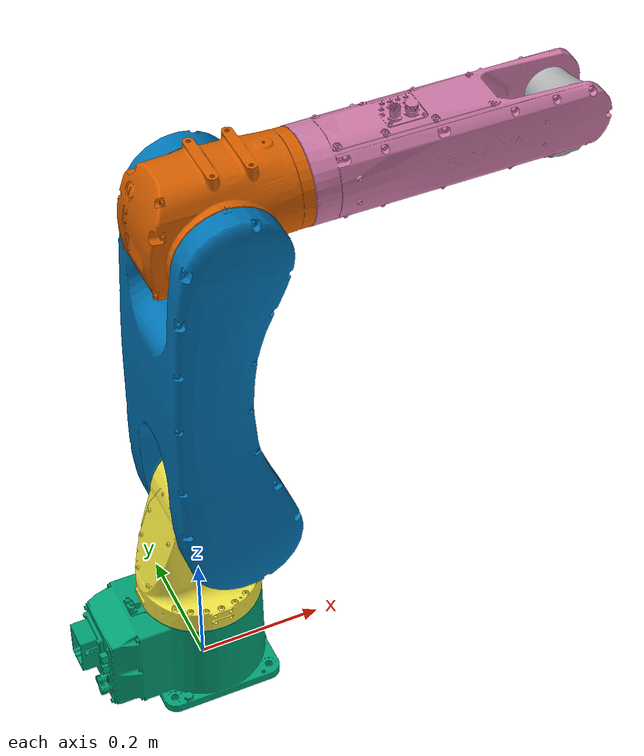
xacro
<?xml version="1.0" ?>
<robot name="nex10" xmlns:xacro="http://ros.org/wiki/xacro">
  <xacro:arg name="tf_prefix" default="" />
  <xacro:arg name="use_mock_hardware" default="false" />
  <xacro:arg name="ip" default="192.168.19.201" />
  <xacro:arg name="port" default="50300" />
  <xacro:arg name="use_ft_sensor" default="false" />
  <xacro:arg name="ft_sensor_ip" default="192.168.19.210" />

  <xacro:include filename="$(find ynx_description)/urdf/nex10/nex10.urdf_macro.xacro" />
  <xacro:include filename="$(find ynx_hardware_interface)/config/nex10/nex10.ros2_control_macro.xacro" />

  <xacro:nex10_urdf_macro tf_prefix="$(arg tf_prefix)"/>
  <xacro:nex10_ros2_control_macro tf_prefix="$(arg tf_prefix)" use_mock_hardware="$(arg use_mock_hardware)" ip="$(arg ip)" port="$(arg port)"/>

  <xacro:if value="$(arg use_ft_sensor)">
    <xacro:include filename="$(find netft_hardware_interface)/config/netft.ros2_control_macro.xacro" />
    <xacro:netft_ros2_control_macro tf_prefix="$(arg tf_prefix)" netft_ip="$(arg ft_sensor_ip)" cpf="600000" cpt="1000000"/>
    <link name="$(arg tf_prefix)ft_frame"/>
    <joint name="$(arg tf_prefix)flange-ft_frame" type="fixed">
      <origin xyz="0 0 -0.0382" rpy="${radians(0)} 0 ${radians(90)}"/>
      <parent link="$(arg tf_prefix)flange"/>
      <child link="$(arg tf_prefix)ft_frame"/>
    </joint>
  </xacro:if>
</robot>

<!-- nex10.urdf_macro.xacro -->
<robot xmlns:xacro="http://ros.org/wiki/xacro">
  <xacro:macro name="nex10_urdf_macro" params="tf_prefix">

    <!-- Links -->
    <link name="${tf_prefix}mount_point"/>
    <link name="${tf_prefix}base_link"/>
    <link name="${tf_prefix}link_0">
      <visual>
        <geometry>
          <mesh filename="package://ynx_description/meshes/nex10/visual/nex10_link_0.obj" scale="1.00000 1.00000 1.00000"/>
        </geometry>
        <origin xyz="0.00000 0.00000 0.00000" rpy="0.00000 0.00000 0.00000"/>
      </visual>
      <collision>
        <geometry>
          <mesh filename="package://ynx_description/meshes/nex10/collision/nex10_link_0.obj" scale="1.00000 1.00000 1.00000"/>
        </geometry>
        <origin xyz="0.00000 0.00000 0.00000" rpy="0.00000 0.00000 0.00000"/>
      </collision>
      <inertial>
        <origin xyz="-0.01198136 -0.000119839 0.10056914" rpy="0 0 0"/>
        <mass value="11.614652"/>
        <inertia ixx="0.058778146" ixy="-0.000277637" ixz="-0.00201866" iyy="0.075028225" iyz="-0.000010718461" izz="0.063979727"/>
      </inertial>
    </link>

    <link name="${tf_prefix}link_1">
      <visual>
        <geometry>
          <mesh filename="package://ynx_description/meshes/nex10/visual/nex10_link_1.obj" scale="1.00000 1.00000 1.00000"/>
        </geometry>
        <origin xyz="0.00000 0.00000 -0.34000" rpy="0.00000 0.00000 0.00000"/>
      </visual>
      <collision>
        <geometry>
          <mesh filename="package://ynx_description/meshes/nex10/collision/nex10_link_1.obj" scale="1.00000 1.00000 1.00000"/>
        </geometry>
        <origin xyz="0.00000 0.00000 -0.34000" rpy="0.00000 0.00000 0.00000"/>
      </collision>
      <inertial>
        <origin xyz="0.027872731 -0.010899885 -0.037883009" rpy="0 0 0"/>
        <mass value="14.601211"/>
        <inertia ixx="0.12940621" ixy="0.0062285841" ixz="-0.0011149618" iyy="0.14728768" iyz="-0.00040799675" izz="0.080226141"/>
       </inertial>
    </link>

    <link name="${tf_prefix}link_2">
      <visual>
        <geometry>
          <mesh filename="package://ynx_description/meshes/nex10/visual/nex10_link_2.obj" scale="1.00000 1.00000 1.00000"/>
        </geometry>
        <origin xyz="-0.34000 -0.04000 0.00000" rpy="${pi/2} 0.00000 ${pi/2}"/>
      </visual>
      <collision>
        <geometry>
          <mesh filename="package://ynx_description/meshes/nex10/collision/nex10_link_2.obj" scale="1.00000 1.00000 1.00000"/>
        </geometry>
        <origin xyz="-0.34000 -0.04000 0.00000" rpy="${pi/2} 0.00000 ${pi/2}"/>
      </collision>
      <inertial>
        <origin xyz="0.2484611 0.023415923 0.027537079" rpy="0 0 0"/>
        <mass value="12.134303"/>
        <inertia ixx="0.11968487" ixy="-0.076545305" ixz="-0.082199967" iyy="1.2259992" iyz="-0.006486549" izz="1.1844546"/>
      </inertial>
    </link>

    <link name="${tf_prefix}link_3">
      <visual>
        <geometry>
          <mesh filename="package://ynx_description/meshes/nex10/visual/nex10_link_3.obj" scale="1.00000 1.00000 1.00000"/>
        </geometry>
        <origin xyz="-0.87000 0.04000 -0.00000" rpy="${-pi/2} -0.00000 ${-pi/2}"/>
      </visual>
      <collision>
        <geometry>
          <mesh filename="package://ynx_description/meshes/nex10/collision/nex10_link_3.obj" scale="1.00000 1.00000 1.00000"/>
        </geometry>
        <origin xyz="-0.87000 0.04000 -0.00000" rpy="${-pi/2} -0.00000 ${-pi/2}"/>
      </collision>
      <inertial>
        <origin xyz="0.020784778 -0.027763654 0.01915227" rpy="0 0 0"/>
        <mass value="11.575628"/>
        <inertia ixx="0.076719056" ixy="0.01439633" ixz="-0.00013095882" iyy="0.052912728" iyz="-0.00018457355" izz="0.082735153"/>
      </inertial>
    </link>

    <link name="${tf_prefix}link_4">
      <visual>
        <geometry>
          <mesh filename="package://ynx_description/meshes/nex10/visual/nex10_link_4.obj" scale="1.00000 1.00000 1.00000"/>
        </geometry>
        <origin xyz="-0.91000 -0.00000 0.57000" rpy="0.00000 ${pi/2} 0.00000"/>
      </visual>
      <collision>
        <geometry>
          <mesh filename="package://ynx_description/meshes/nex10/collision/nex10_link_4.obj" scale="1.00000 1.00000 1.00000"/>
        </geometry>
        <origin xyz="-0.91000 -0.00000 0.57000" rpy="0.00000 ${pi/2} 0.00000"/>
      </collision>
      <inertial>
        <origin xyz="0.01482369566 0.00032834388 0.09921236" rpy="0 0 0"/>
        <mass value="6.4670019"/>
        <inertia ixx="0.331695" ixy="0.000012290258" ixz="-0.00017923527" iyy="0.33131076" iyz="-0.000016232548" izz="0.01604509"/>
      </inertial>
    </link>

    <link name="${tf_prefix}link_5">
      <visual>
        <geometry>
          <mesh filename="package://ynx_description/meshes/nex10/visual/nex10_link_5.obj" scale="1.00000 1.00000 1.00000"/>
        </geometry>
        <origin xyz="-0.91000 0.57000 -0.00000" rpy="${-pi/2} 0.00000 ${-pi/2}"/>
      </visual>
      <collision>
        <geometry>
          <mesh filename="package://ynx_description/meshes/nex10/collision/nex10_link_5.obj" scale="1.00000 1.00000 1.00000"/>
        </geometry>
        <origin xyz="-0.91000 0.57000 -0.00000" rpy="${-pi/2} 0.00000 ${-pi/2}"/>
      </collision>
      <inertial>
        <origin xyz="-0.00000070659904 -0.0014020336 0.010049637" rpy="0 0 0"/>
        <mass value="1.4924486"/>
        <inertia ixx="0.0016160342" ixy="0.00000031177813" ixz="0.000000038377563" iyy="0.0016047549" iyz="-0.000042378476" izz="0.0013385143"/>
      </inertial>
    </link>

    <link name="${tf_prefix}link_6">
      <visual>
        <geometry>
          <mesh filename="package://ynx_description/meshes/nex10/visual/nex10_link_6.obj" scale="1.00000 1.00000 1.00000"/>
        </geometry>
        <origin xyz="0.57000 -0.00000 -0.83000" rpy="0.00000 0.00000 ${pi}"/>
      </visual>
      <collision>
        <geometry>
          <mesh filename="package://ynx_description/meshes/nex10/collision/nex10_link_6.obj" scale="1.00000 1.00000 1.00000"/>
        </geometry>
        <origin xyz="0.57000 -0.00000 -0.83000" rpy="0.00000 0.00000 ${pi}"/>
      </collision>
      <inertial>
        <origin xyz="-0.0000073005324 -0.00000099813232 -0.022010615" rpy="0 0 0"/>
        <mass value="0.67431737"/>
        <inertia ixx="0.00061684704" ixy="-0.0000001077084" ixz="-0.000000079162174" iyy="0.00069023137" iyz="0.0000000083938401" izz="0.00049323898"/>
      </inertial>
    </link>

    <!-- Joints -->

    <joint name="${tf_prefix}base_joint" type="fixed">
      <origin xyz="0 0 0" rpy="0 0 0" />
      <parent link="${tf_prefix}mount_point" />
      <child link="${tf_prefix}base_link" />
    </joint>

    <joint name="${tf_prefix}base_link-link_0" type="fixed">
      <parent link="${tf_prefix}base_link" />
      <child link="${tf_prefix}link_0" />
      <origin xyz="0 0 0" rpy="0 0 0" />
    </joint>

    <joint name="${tf_prefix}joint_1" type="revolute">
      <parent link="${tf_prefix}link_0"/>
      <child link="${tf_prefix}link_1"/>
      <axis xyz="0 0 1"/>
      <origin xyz="0.00000 0.00000 0.34000" rpy="0.00000 0.00000 0.00000"/>
      <limit lower="${radians(-180)}" upper="${radians(180)}" effort="311.25" velocity="${radians(300)}"/>
    </joint>

    <joint name="${tf_prefix}joint_2" type="revolute">
      <parent link="${tf_prefix}link_1"/>
      <child link="${tf_prefix}link_2"/>
      <axis xyz="0 0 1"/>
      <origin xyz="0.04000 0.00000 0.00000" rpy="${-pi/2} ${-pi/2} 0.00000"/>
      <limit lower="${radians(-100)}" upper="${radians(145)}" effort="494.7" velocity="${radians(250)}"/>
    </joint>

    <joint name="${tf_prefix}joint_3" type="revolute">
      <parent link="${tf_prefix}link_2"/>
      <child link="${tf_prefix}link_3"/>
      <axis xyz="0 0 1"/>
      <origin xyz="0.53000 0.00000 -0.00000" rpy="${-pi} 0.00000 0.00000"/>
      <limit lower="${radians(-70)}" upper="${radians(190)}" effort="219.75" velocity="${radians(340)}"/>
    </joint>

    <joint name="${tf_prefix}joint_4" type="revolute">
      <parent link="${tf_prefix}link_3"/>
      <child link="${tf_prefix}link_4"/>
      <axis xyz="0 0 1"/>
      <origin xyz="0.04000 -0.53000 0.00000" rpy="${-pi/2} 0.00000 0.00000"/>
      <limit lower="${radians(-190)}" upper="${radians(190)}" effort="52" velocity="${radians(500)}"/>
    </joint>

    <joint name="${tf_prefix}joint_5" type="revolute">
      <parent link="${tf_prefix}link_4"/>
      <child link="${tf_prefix}link_5"/>
      <axis xyz="0 0 1"/>
      <origin xyz="0.00000 0.00000 0.00000" rpy="${pi/2} 0.00000 0.00000"/>
      <limit lower="${radians(-45)}" upper="${radians(225)}" effort="35" velocity="${radians(470)}"/>
    </joint>

    <joint name="${tf_prefix}joint_6" type="revolute">
      <parent link="${tf_prefix}link_5"/>
      <child link="${tf_prefix}link_6"/>
      <axis xyz="0 0 1"/>
      <origin xyz="-0.08000 0.00000 0.00000" rpy="${pi/2} 0.00000 ${pi/2}"/>
      <limit lower="${radians(-360)}" upper="${radians(360)}"  effort="20" velocity="${radians(800)}"/>
    </joint>
    <!-- end of joint list -->

    <!-- ROS-Industrial 'flange' frame: attachment point for EEF models -->
    <link name="${tf_prefix}flange"/>
    <joint name="${tf_prefix}joint_6-flange" type="fixed">
      <origin xyz="0 0 0" rpy="0 0 0"/>
      <parent link="${tf_prefix}link_6"/>
      <child link="${tf_prefix}flange"/>
    </joint>

    <!-- ROS-Industrial 'tool0' frame: all-zeros tool frame -->
    <link name="${tf_prefix}tool0"/>
    <joint name="${tf_prefix}flange-tool0" type="fixed">
      <origin xyz="0 0 0" rpy="${radians(180)} 0 ${radians(90)}"/>
      <parent link="${tf_prefix}flange"/>
      <child link="${tf_prefix}tool0"/>
    </joint>
  </xacro:macro>
</robot>
